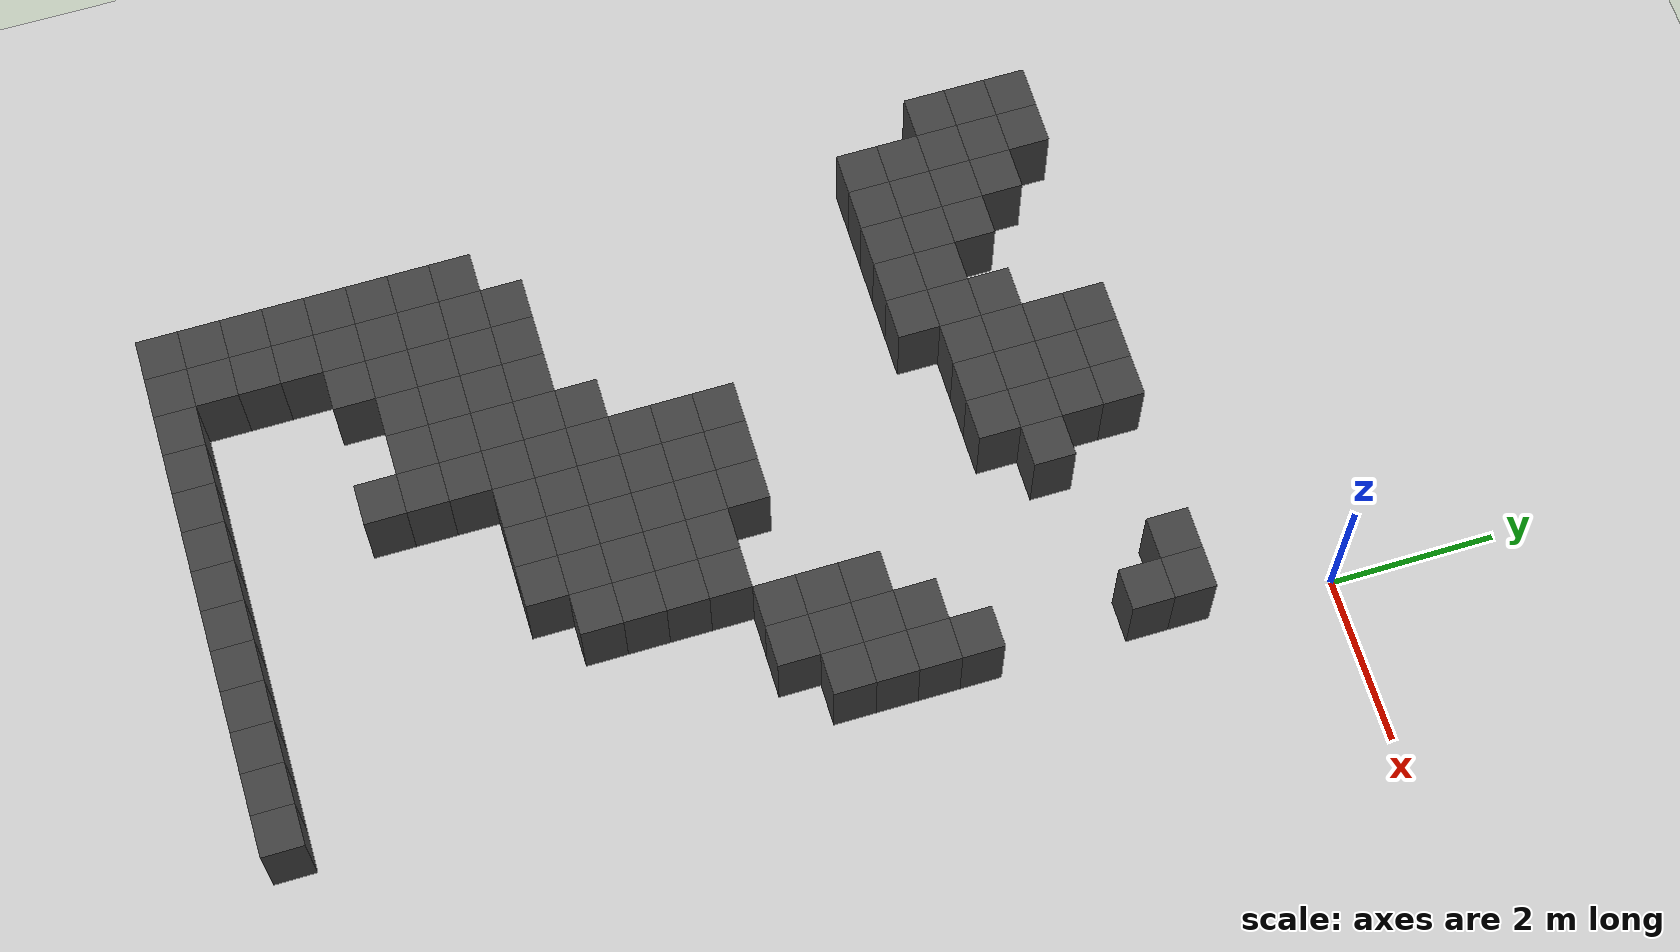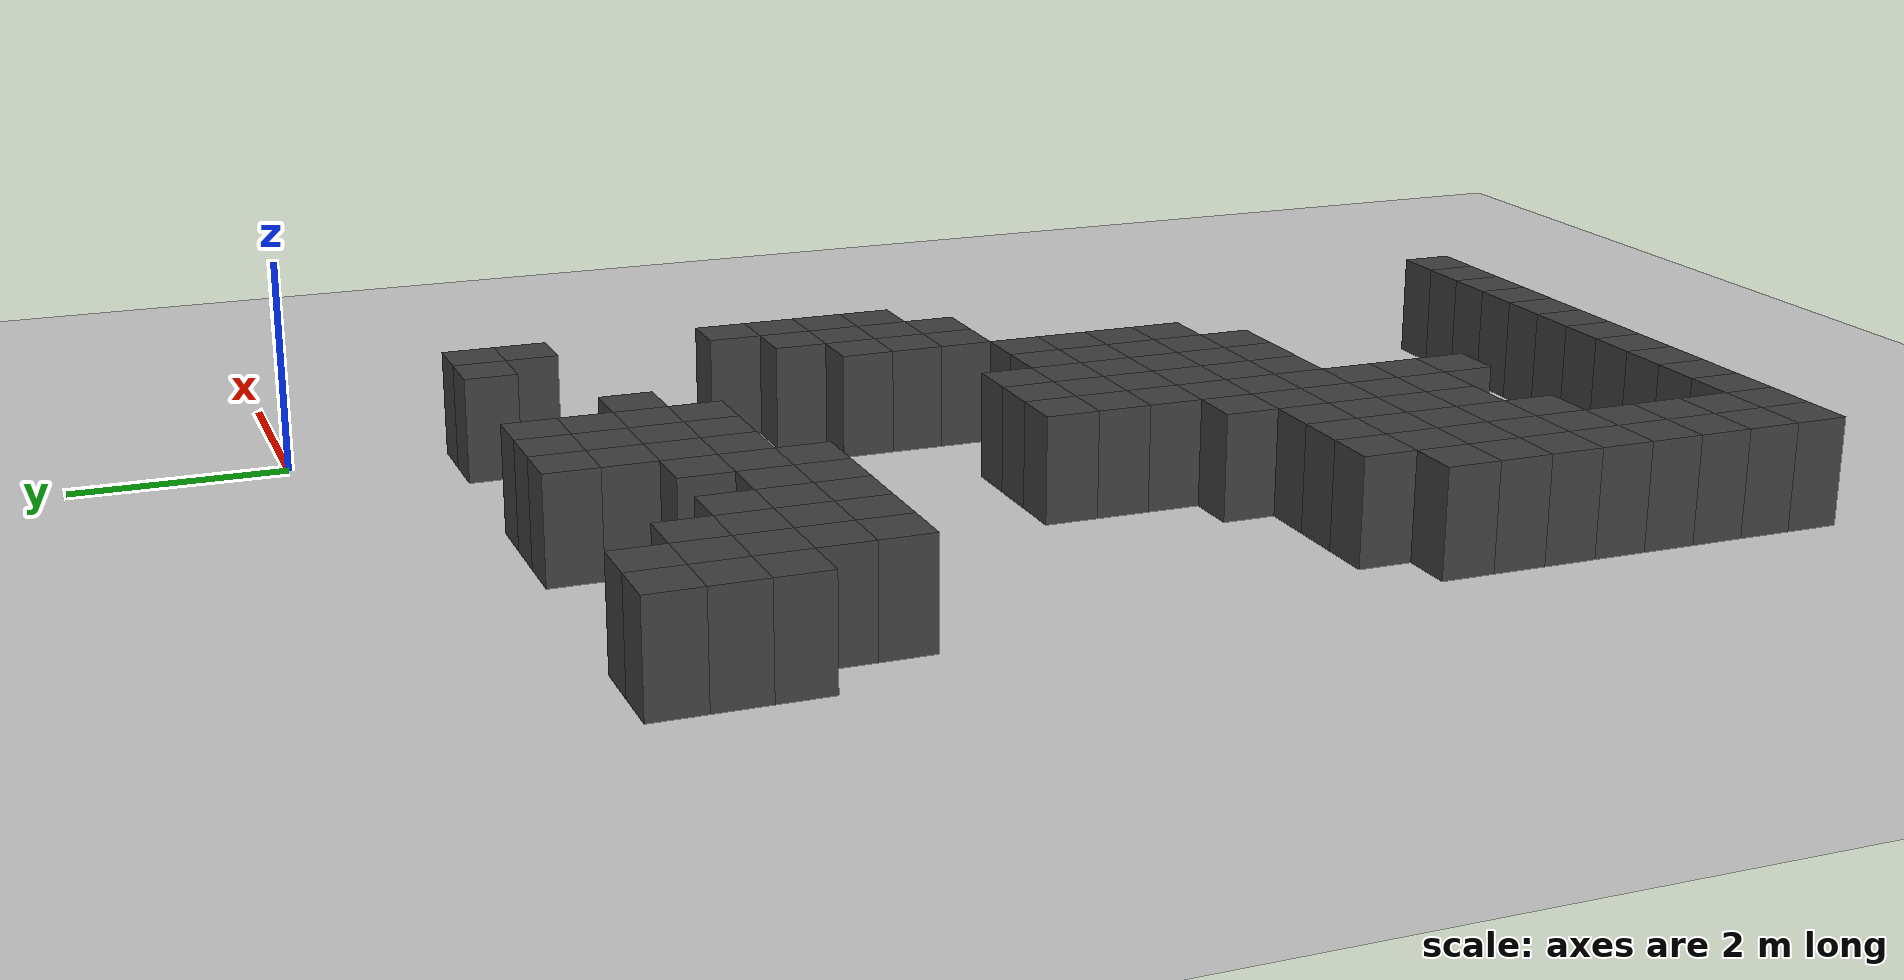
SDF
<sdf version="1.7">
 <world name="map_9826">
  <model name="ground_plane">
   <static>true</static>
   <link name="link">
    <collision name="collision">
     <geometry><plane><normal>0 0 1</normal><size>200 200</size></plane></geometry>
    </collision>
    <visual name="visual">
     <geometry><plane><normal>0 0 1</normal><size>200 200</size></plane></geometry>
     <material><ambient>0.8 0.8 0.8 1</ambient><diffuse>0.8 0.8 0.8 1</diffuse></material>
    </visual>
   </link>
  </model>
  <model name="maze_environment">
   <static>true</static>
   <link name="wall_610">
    <pose>-6.750 -1.750 0.500 0 0 0</pose>
    <collision name="col"><geometry><box><size>0.5 0.5 1.0</size></box></geometry></collision>
    <visual name="vis">
     <geometry><box><size>0.5 0.5 1.0</size></box></geometry>
     <material><ambient>0.15 0.15 0.15 1</ambient><diffuse>0.25 0.25 0.25 1</diffuse></material>
    </visual>
   </link>
   <link name="wall_611">
    <pose>-6.250 -1.750 0.500 0 0 0</pose>
    <collision name="col"><geometry><box><size>0.5 0.5 1.0</size></box></geometry></collision>
    <visual name="vis">
     <geometry><box><size>0.5 0.5 1.0</size></box></geometry>
     <material><ambient>0.15 0.15 0.15 1</ambient><diffuse>0.25 0.25 0.25 1</diffuse></material>
    </visual>
   </link>
   <link name="wall_612">
    <pose>-3.750 -1.750 0.500 0 0 0</pose>
    <collision name="col"><geometry><box><size>0.5 0.5 1.0</size></box></geometry></collision>
    <visual name="vis">
     <geometry><box><size>0.5 0.5 1.0</size></box></geometry>
     <material><ambient>0.15 0.15 0.15 1</ambient><diffuse>0.25 0.25 0.25 1</diffuse></material>
    </visual>
   </link>
   <link name="wall_613">
    <pose>-3.250 -1.750 0.500 0 0 0</pose>
    <collision name="col"><geometry><box><size>0.5 0.5 1.0</size></box></geometry></collision>
    <visual name="vis">
     <geometry><box><size>0.5 0.5 1.0</size></box></geometry>
     <material><ambient>0.15 0.15 0.15 1</ambient><diffuse>0.25 0.25 0.25 1</diffuse></material>
    </visual>
   </link>
   <link name="wall_614">
    <pose>-2.750 -1.750 0.500 0 0 0</pose>
    <collision name="col"><geometry><box><size>0.5 0.5 1.0</size></box></geometry></collision>
    <visual name="vis">
     <geometry><box><size>0.5 0.5 1.0</size></box></geometry>
     <material><ambient>0.15 0.15 0.15 1</ambient><diffuse>0.25 0.25 0.25 1</diffuse></material>
    </visual>
   </link>
   <link name="wall_615">
    <pose>-0.750 -1.750 0.500 0 0 0</pose>
    <collision name="col"><geometry><box><size>0.5 0.5 1.0</size></box></geometry></collision>
    <visual name="vis">
     <geometry><box><size>0.5 0.5 1.0</size></box></geometry>
     <material><ambient>0.15 0.15 0.15 1</ambient><diffuse>0.25 0.25 0.25 1</diffuse></material>
    </visual>
   </link>
   <link name="wall_616">
    <pose>-0.250 -1.750 0.500 0 0 0</pose>
    <collision name="col"><geometry><box><size>0.5 0.5 1.0</size></box></geometry></collision>
    <visual name="vis">
     <geometry><box><size>0.5 0.5 1.0</size></box></geometry>
     <material><ambient>0.15 0.15 0.15 1</ambient><diffuse>0.25 0.25 0.25 1</diffuse></material>
    </visual>
   </link>
   <link name="wall_632">
    <pose>-6.750 -2.250 0.500 0 0 0</pose>
    <collision name="col"><geometry><box><size>0.5 0.5 1.0</size></box></geometry></collision>
    <visual name="vis">
     <geometry><box><size>0.5 0.5 1.0</size></box></geometry>
     <material><ambient>0.15 0.15 0.15 1</ambient><diffuse>0.25 0.25 0.25 1</diffuse></material>
    </visual>
   </link>
   <link name="wall_633">
    <pose>-6.250 -2.250 0.500 0 0 0</pose>
    <collision name="col"><geometry><box><size>0.5 0.5 1.0</size></box></geometry></collision>
    <visual name="vis">
     <geometry><box><size>0.5 0.5 1.0</size></box></geometry>
     <material><ambient>0.15 0.15 0.15 1</ambient><diffuse>0.25 0.25 0.25 1</diffuse></material>
    </visual>
   </link>
   <link name="wall_634">
    <pose>-5.750 -2.250 0.500 0 0 0</pose>
    <collision name="col"><geometry><box><size>0.5 0.5 1.0</size></box></geometry></collision>
    <visual name="vis">
     <geometry><box><size>0.5 0.5 1.0</size></box></geometry>
     <material><ambient>0.15 0.15 0.15 1</ambient><diffuse>0.25 0.25 0.25 1</diffuse></material>
    </visual>
   </link>
   <link name="wall_635">
    <pose>-3.750 -2.250 0.500 0 0 0</pose>
    <collision name="col"><geometry><box><size>0.5 0.5 1.0</size></box></geometry></collision>
    <visual name="vis">
     <geometry><box><size>0.5 0.5 1.0</size></box></geometry>
     <material><ambient>0.15 0.15 0.15 1</ambient><diffuse>0.25 0.25 0.25 1</diffuse></material>
    </visual>
   </link>
   <link name="wall_636">
    <pose>-3.250 -2.250 0.500 0 0 0</pose>
    <collision name="col"><geometry><box><size>0.5 0.5 1.0</size></box></geometry></collision>
    <visual name="vis">
     <geometry><box><size>0.5 0.5 1.0</size></box></geometry>
     <material><ambient>0.15 0.15 0.15 1</ambient><diffuse>0.25 0.25 0.25 1</diffuse></material>
    </visual>
   </link>
   <link name="wall_637">
    <pose>-2.750 -2.250 0.500 0 0 0</pose>
    <collision name="col"><geometry><box><size>0.5 0.5 1.0</size></box></geometry></collision>
    <visual name="vis">
     <geometry><box><size>0.5 0.5 1.0</size></box></geometry>
     <material><ambient>0.15 0.15 0.15 1</ambient><diffuse>0.25 0.25 0.25 1</diffuse></material>
    </visual>
   </link>
   <link name="wall_638">
    <pose>-0.250 -2.250 0.500 0 0 0</pose>
    <collision name="col"><geometry><box><size>0.5 0.5 1.0</size></box></geometry></collision>
    <visual name="vis">
     <geometry><box><size>0.5 0.5 1.0</size></box></geometry>
     <material><ambient>0.15 0.15 0.15 1</ambient><diffuse>0.25 0.25 0.25 1</diffuse></material>
    </visual>
   </link>
   <link name="wall_648">
    <pose>-6.750 -2.750 0.500 0 0 0</pose>
    <collision name="col"><geometry><box><size>0.5 0.5 1.0</size></box></geometry></collision>
    <visual name="vis">
     <geometry><box><size>0.5 0.5 1.0</size></box></geometry>
     <material><ambient>0.15 0.15 0.15 1</ambient><diffuse>0.25 0.25 0.25 1</diffuse></material>
    </visual>
   </link>
   <link name="wall_649">
    <pose>-6.250 -2.750 0.500 0 0 0</pose>
    <collision name="col"><geometry><box><size>0.5 0.5 1.0</size></box></geometry></collision>
    <visual name="vis">
     <geometry><box><size>0.5 0.5 1.0</size></box></geometry>
     <material><ambient>0.15 0.15 0.15 1</ambient><diffuse>0.25 0.25 0.25 1</diffuse></material>
    </visual>
   </link>
   <link name="wall_650">
    <pose>-5.750 -2.750 0.500 0 0 0</pose>
    <collision name="col"><geometry><box><size>0.5 0.5 1.0</size></box></geometry></collision>
    <visual name="vis">
     <geometry><box><size>0.5 0.5 1.0</size></box></geometry>
     <material><ambient>0.15 0.15 0.15 1</ambient><diffuse>0.25 0.25 0.25 1</diffuse></material>
    </visual>
   </link>
   <link name="wall_651">
    <pose>-5.250 -2.750 0.500 0 0 0</pose>
    <collision name="col"><geometry><box><size>0.5 0.5 1.0</size></box></geometry></collision>
    <visual name="vis">
     <geometry><box><size>0.5 0.5 1.0</size></box></geometry>
     <material><ambient>0.15 0.15 0.15 1</ambient><diffuse>0.25 0.25 0.25 1</diffuse></material>
    </visual>
   </link>
   <link name="wall_652">
    <pose>-4.250 -2.750 0.500 0 0 0</pose>
    <collision name="col"><geometry><box><size>0.5 0.5 1.0</size></box></geometry></collision>
    <visual name="vis">
     <geometry><box><size>0.5 0.5 1.0</size></box></geometry>
     <material><ambient>0.15 0.15 0.15 1</ambient><diffuse>0.25 0.25 0.25 1</diffuse></material>
    </visual>
   </link>
   <link name="wall_653">
    <pose>-3.750 -2.750 0.500 0 0 0</pose>
    <collision name="col"><geometry><box><size>0.5 0.5 1.0</size></box></geometry></collision>
    <visual name="vis">
     <geometry><box><size>0.5 0.5 1.0</size></box></geometry>
     <material><ambient>0.15 0.15 0.15 1</ambient><diffuse>0.25 0.25 0.25 1</diffuse></material>
    </visual>
   </link>
   <link name="wall_654">
    <pose>-3.250 -2.750 0.500 0 0 0</pose>
    <collision name="col"><geometry><box><size>0.5 0.5 1.0</size></box></geometry></collision>
    <visual name="vis">
     <geometry><box><size>0.5 0.5 1.0</size></box></geometry>
     <material><ambient>0.15 0.15 0.15 1</ambient><diffuse>0.25 0.25 0.25 1</diffuse></material>
    </visual>
   </link>
   <link name="wall_655">
    <pose>-2.750 -2.750 0.500 0 0 0</pose>
    <collision name="col"><geometry><box><size>0.5 0.5 1.0</size></box></geometry></collision>
    <visual name="vis">
     <geometry><box><size>0.5 0.5 1.0</size></box></geometry>
     <material><ambient>0.15 0.15 0.15 1</ambient><diffuse>0.25 0.25 0.25 1</diffuse></material>
    </visual>
   </link>
   <link name="wall_656">
    <pose>-2.250 -2.750 0.500 0 0 0</pose>
    <collision name="col"><geometry><box><size>0.5 0.5 1.0</size></box></geometry></collision>
    <visual name="vis">
     <geometry><box><size>0.5 0.5 1.0</size></box></geometry>
     <material><ambient>0.15 0.15 0.15 1</ambient><diffuse>0.25 0.25 0.25 1</diffuse></material>
    </visual>
   </link>
   <link name="wall_664">
    <pose>-6.250 -3.250 0.500 0 0 0</pose>
    <collision name="col"><geometry><box><size>0.5 0.5 1.0</size></box></geometry></collision>
    <visual name="vis">
     <geometry><box><size>0.5 0.5 1.0</size></box></geometry>
     <material><ambient>0.15 0.15 0.15 1</ambient><diffuse>0.25 0.25 0.25 1</diffuse></material>
    </visual>
   </link>
   <link name="wall_665">
    <pose>-5.750 -3.250 0.500 0 0 0</pose>
    <collision name="col"><geometry><box><size>0.5 0.5 1.0</size></box></geometry></collision>
    <visual name="vis">
     <geometry><box><size>0.5 0.5 1.0</size></box></geometry>
     <material><ambient>0.15 0.15 0.15 1</ambient><diffuse>0.25 0.25 0.25 1</diffuse></material>
    </visual>
   </link>
   <link name="wall_666">
    <pose>-5.250 -3.250 0.500 0 0 0</pose>
    <collision name="col"><geometry><box><size>0.5 0.5 1.0</size></box></geometry></collision>
    <visual name="vis">
     <geometry><box><size>0.5 0.5 1.0</size></box></geometry>
     <material><ambient>0.15 0.15 0.15 1</ambient><diffuse>0.25 0.25 0.25 1</diffuse></material>
    </visual>
   </link>
   <link name="wall_667">
    <pose>-4.750 -3.250 0.500 0 0 0</pose>
    <collision name="col"><geometry><box><size>0.5 0.5 1.0</size></box></geometry></collision>
    <visual name="vis">
     <geometry><box><size>0.5 0.5 1.0</size></box></geometry>
     <material><ambient>0.15 0.15 0.15 1</ambient><diffuse>0.25 0.25 0.25 1</diffuse></material>
    </visual>
   </link>
   <link name="wall_668">
    <pose>-4.250 -3.250 0.500 0 0 0</pose>
    <collision name="col"><geometry><box><size>0.5 0.5 1.0</size></box></geometry></collision>
    <visual name="vis">
     <geometry><box><size>0.5 0.5 1.0</size></box></geometry>
     <material><ambient>0.15 0.15 0.15 1</ambient><diffuse>0.25 0.25 0.25 1</diffuse></material>
    </visual>
   </link>
   <link name="wall_669">
    <pose>-3.750 -3.250 0.500 0 0 0</pose>
    <collision name="col"><geometry><box><size>0.5 0.5 1.0</size></box></geometry></collision>
    <visual name="vis">
     <geometry><box><size>0.5 0.5 1.0</size></box></geometry>
     <material><ambient>0.15 0.15 0.15 1</ambient><diffuse>0.25 0.25 0.25 1</diffuse></material>
    </visual>
   </link>
   <link name="wall_670">
    <pose>-3.250 -3.250 0.500 0 0 0</pose>
    <collision name="col"><geometry><box><size>0.5 0.5 1.0</size></box></geometry></collision>
    <visual name="vis">
     <geometry><box><size>0.5 0.5 1.0</size></box></geometry>
     <material><ambient>0.15 0.15 0.15 1</ambient><diffuse>0.25 0.25 0.25 1</diffuse></material>
    </visual>
   </link>
   <link name="wall_671">
    <pose>-2.750 -3.250 0.500 0 0 0</pose>
    <collision name="col"><geometry><box><size>0.5 0.5 1.0</size></box></geometry></collision>
    <visual name="vis">
     <geometry><box><size>0.5 0.5 1.0</size></box></geometry>
     <material><ambient>0.15 0.15 0.15 1</ambient><diffuse>0.25 0.25 0.25 1</diffuse></material>
    </visual>
   </link>
   <link name="wall_680">
    <pose>-6.250 -3.750 0.500 0 0 0</pose>
    <collision name="col"><geometry><box><size>0.5 0.5 1.0</size></box></geometry></collision>
    <visual name="vis">
     <geometry><box><size>0.5 0.5 1.0</size></box></geometry>
     <material><ambient>0.15 0.15 0.15 1</ambient><diffuse>0.25 0.25 0.25 1</diffuse></material>
    </visual>
   </link>
   <link name="wall_681">
    <pose>-5.750 -3.750 0.500 0 0 0</pose>
    <collision name="col"><geometry><box><size>0.5 0.5 1.0</size></box></geometry></collision>
    <visual name="vis">
     <geometry><box><size>0.5 0.5 1.0</size></box></geometry>
     <material><ambient>0.15 0.15 0.15 1</ambient><diffuse>0.25 0.25 0.25 1</diffuse></material>
    </visual>
   </link>
   <link name="wall_682">
    <pose>-5.250 -3.750 0.500 0 0 0</pose>
    <collision name="col"><geometry><box><size>0.5 0.5 1.0</size></box></geometry></collision>
    <visual name="vis">
     <geometry><box><size>0.5 0.5 1.0</size></box></geometry>
     <material><ambient>0.15 0.15 0.15 1</ambient><diffuse>0.25 0.25 0.25 1</diffuse></material>
    </visual>
   </link>
   <link name="wall_683">
    <pose>-4.750 -3.750 0.500 0 0 0</pose>
    <collision name="col"><geometry><box><size>0.5 0.5 1.0</size></box></geometry></collision>
    <visual name="vis">
     <geometry><box><size>0.5 0.5 1.0</size></box></geometry>
     <material><ambient>0.15 0.15 0.15 1</ambient><diffuse>0.25 0.25 0.25 1</diffuse></material>
    </visual>
   </link>
   <link name="wall_684">
    <pose>-4.250 -3.750 0.500 0 0 0</pose>
    <collision name="col"><geometry><box><size>0.5 0.5 1.0</size></box></geometry></collision>
    <visual name="vis">
     <geometry><box><size>0.5 0.5 1.0</size></box></geometry>
     <material><ambient>0.15 0.15 0.15 1</ambient><diffuse>0.25 0.25 0.25 1</diffuse></material>
    </visual>
   </link>
   <link name="wall_694">
    <pose>-0.250 -4.250 0.500 0 0 0</pose>
    <collision name="col"><geometry><box><size>0.5 0.5 1.0</size></box></geometry></collision>
    <visual name="vis">
     <geometry><box><size>0.5 0.5 1.0</size></box></geometry>
     <material><ambient>0.15 0.15 0.15 1</ambient><diffuse>0.25 0.25 0.25 1</diffuse></material>
    </visual>
   </link>
   <link name="wall_707">
    <pose>-0.750 -4.750 0.500 0 0 0</pose>
    <collision name="col"><geometry><box><size>0.5 0.5 1.0</size></box></geometry></collision>
    <visual name="vis">
     <geometry><box><size>0.5 0.5 1.0</size></box></geometry>
     <material><ambient>0.15 0.15 0.15 1</ambient><diffuse>0.25 0.25 0.25 1</diffuse></material>
    </visual>
   </link>
   <link name="wall_708">
    <pose>-0.250 -4.750 0.500 0 0 0</pose>
    <collision name="col"><geometry><box><size>0.5 0.5 1.0</size></box></geometry></collision>
    <visual name="vis">
     <geometry><box><size>0.5 0.5 1.0</size></box></geometry>
     <material><ambient>0.15 0.15 0.15 1</ambient><diffuse>0.25 0.25 0.25 1</diffuse></material>
    </visual>
   </link>
   <link name="wall_723">
    <pose>-1.250 -5.250 0.500 0 0 0</pose>
    <collision name="col"><geometry><box><size>0.5 0.5 1.0</size></box></geometry></collision>
    <visual name="vis">
     <geometry><box><size>0.5 0.5 1.0</size></box></geometry>
     <material><ambient>0.15 0.15 0.15 1</ambient><diffuse>0.25 0.25 0.25 1</diffuse></material>
    </visual>
   </link>
   <link name="wall_724">
    <pose>-0.750 -5.250 0.500 0 0 0</pose>
    <collision name="col"><geometry><box><size>0.5 0.5 1.0</size></box></geometry></collision>
    <visual name="vis">
     <geometry><box><size>0.5 0.5 1.0</size></box></geometry>
     <material><ambient>0.15 0.15 0.15 1</ambient><diffuse>0.25 0.25 0.25 1</diffuse></material>
    </visual>
   </link>
   <link name="wall_725">
    <pose>-0.250 -5.250 0.500 0 0 0</pose>
    <collision name="col"><geometry><box><size>0.5 0.5 1.0</size></box></geometry></collision>
    <visual name="vis">
     <geometry><box><size>0.5 0.5 1.0</size></box></geometry>
     <material><ambient>0.15 0.15 0.15 1</ambient><diffuse>0.25 0.25 0.25 1</diffuse></material>
    </visual>
   </link>
   <link name="wall_742">
    <pose>-1.250 -5.750 0.500 0 0 0</pose>
    <collision name="col"><geometry><box><size>0.5 0.5 1.0</size></box></geometry></collision>
    <visual name="vis">
     <geometry><box><size>0.5 0.5 1.0</size></box></geometry>
     <material><ambient>0.15 0.15 0.15 1</ambient><diffuse>0.25 0.25 0.25 1</diffuse></material>
    </visual>
   </link>
   <link name="wall_743">
    <pose>-0.750 -5.750 0.500 0 0 0</pose>
    <collision name="col"><geometry><box><size>0.5 0.5 1.0</size></box></geometry></collision>
    <visual name="vis">
     <geometry><box><size>0.5 0.5 1.0</size></box></geometry>
     <material><ambient>0.15 0.15 0.15 1</ambient><diffuse>0.25 0.25 0.25 1</diffuse></material>
    </visual>
   </link>
   <link name="wall_744">
    <pose>-0.250 -5.750 0.500 0 0 0</pose>
    <collision name="col"><geometry><box><size>0.5 0.5 1.0</size></box></geometry></collision>
    <visual name="vis">
     <geometry><box><size>0.5 0.5 1.0</size></box></geometry>
     <material><ambient>0.15 0.15 0.15 1</ambient><diffuse>0.25 0.25 0.25 1</diffuse></material>
    </visual>
   </link>
   <link name="wall_761">
    <pose>-3.750 -6.250 0.500 0 0 0</pose>
    <collision name="col"><geometry><box><size>0.5 0.5 1.0</size></box></geometry></collision>
    <visual name="vis">
     <geometry><box><size>0.5 0.5 1.0</size></box></geometry>
     <material><ambient>0.15 0.15 0.15 1</ambient><diffuse>0.25 0.25 0.25 1</diffuse></material>
    </visual>
   </link>
   <link name="wall_762">
    <pose>-3.250 -6.250 0.500 0 0 0</pose>
    <collision name="col"><geometry><box><size>0.5 0.5 1.0</size></box></geometry></collision>
    <visual name="vis">
     <geometry><box><size>0.5 0.5 1.0</size></box></geometry>
     <material><ambient>0.15 0.15 0.15 1</ambient><diffuse>0.25 0.25 0.25 1</diffuse></material>
    </visual>
   </link>
   <link name="wall_763">
    <pose>-2.750 -6.250 0.500 0 0 0</pose>
    <collision name="col"><geometry><box><size>0.5 0.5 1.0</size></box></geometry></collision>
    <visual name="vis">
     <geometry><box><size>0.5 0.5 1.0</size></box></geometry>
     <material><ambient>0.15 0.15 0.15 1</ambient><diffuse>0.25 0.25 0.25 1</diffuse></material>
    </visual>
   </link>
   <link name="wall_764">
    <pose>-1.250 -6.250 0.500 0 0 0</pose>
    <collision name="col"><geometry><box><size>0.5 0.5 1.0</size></box></geometry></collision>
    <visual name="vis">
     <geometry><box><size>0.5 0.5 1.0</size></box></geometry>
     <material><ambient>0.15 0.15 0.15 1</ambient><diffuse>0.25 0.25 0.25 1</diffuse></material>
    </visual>
   </link>
   <link name="wall_765">
    <pose>-0.750 -6.250 0.500 0 0 0</pose>
    <collision name="col"><geometry><box><size>0.5 0.5 1.0</size></box></geometry></collision>
    <visual name="vis">
     <geometry><box><size>0.5 0.5 1.0</size></box></geometry>
     <material><ambient>0.15 0.15 0.15 1</ambient><diffuse>0.25 0.25 0.25 1</diffuse></material>
    </visual>
   </link>
   <link name="wall_783">
    <pose>-3.750 -6.750 0.500 0 0 0</pose>
    <collision name="col"><geometry><box><size>0.5 0.5 1.0</size></box></geometry></collision>
    <visual name="vis">
     <geometry><box><size>0.5 0.5 1.0</size></box></geometry>
     <material><ambient>0.15 0.15 0.15 1</ambient><diffuse>0.25 0.25 0.25 1</diffuse></material>
    </visual>
   </link>
   <link name="wall_784">
    <pose>-3.250 -6.750 0.500 0 0 0</pose>
    <collision name="col"><geometry><box><size>0.5 0.5 1.0</size></box></geometry></collision>
    <visual name="vis">
     <geometry><box><size>0.5 0.5 1.0</size></box></geometry>
     <material><ambient>0.15 0.15 0.15 1</ambient><diffuse>0.25 0.25 0.25 1</diffuse></material>
    </visual>
   </link>
   <link name="wall_785">
    <pose>-2.750 -6.750 0.500 0 0 0</pose>
    <collision name="col"><geometry><box><size>0.5 0.5 1.0</size></box></geometry></collision>
    <visual name="vis">
     <geometry><box><size>0.5 0.5 1.0</size></box></geometry>
     <material><ambient>0.15 0.15 0.15 1</ambient><diffuse>0.25 0.25 0.25 1</diffuse></material>
    </visual>
   </link>
   <link name="wall_786">
    <pose>-2.250 -6.750 0.500 0 0 0</pose>
    <collision name="col"><geometry><box><size>0.5 0.5 1.0</size></box></geometry></collision>
    <visual name="vis">
     <geometry><box><size>0.5 0.5 1.0</size></box></geometry>
     <material><ambient>0.15 0.15 0.15 1</ambient><diffuse>0.25 0.25 0.25 1</diffuse></material>
    </visual>
   </link>
   <link name="wall_787">
    <pose>-1.750 -6.750 0.500 0 0 0</pose>
    <collision name="col"><geometry><box><size>0.5 0.5 1.0</size></box></geometry></collision>
    <visual name="vis">
     <geometry><box><size>0.5 0.5 1.0</size></box></geometry>
     <material><ambient>0.15 0.15 0.15 1</ambient><diffuse>0.25 0.25 0.25 1</diffuse></material>
    </visual>
   </link>
   <link name="wall_804">
    <pose>-3.750 -7.250 0.500 0 0 0</pose>
    <collision name="col"><geometry><box><size>0.5 0.5 1.0</size></box></geometry></collision>
    <visual name="vis">
     <geometry><box><size>0.5 0.5 1.0</size></box></geometry>
     <material><ambient>0.15 0.15 0.15 1</ambient><diffuse>0.25 0.25 0.25 1</diffuse></material>
    </visual>
   </link>
   <link name="wall_805">
    <pose>-3.250 -7.250 0.500 0 0 0</pose>
    <collision name="col"><geometry><box><size>0.5 0.5 1.0</size></box></geometry></collision>
    <visual name="vis">
     <geometry><box><size>0.5 0.5 1.0</size></box></geometry>
     <material><ambient>0.15 0.15 0.15 1</ambient><diffuse>0.25 0.25 0.25 1</diffuse></material>
    </visual>
   </link>
   <link name="wall_806">
    <pose>-2.750 -7.250 0.500 0 0 0</pose>
    <collision name="col"><geometry><box><size>0.5 0.5 1.0</size></box></geometry></collision>
    <visual name="vis">
     <geometry><box><size>0.5 0.5 1.0</size></box></geometry>
     <material><ambient>0.15 0.15 0.15 1</ambient><diffuse>0.25 0.25 0.25 1</diffuse></material>
    </visual>
   </link>
   <link name="wall_807">
    <pose>-2.250 -7.250 0.500 0 0 0</pose>
    <collision name="col"><geometry><box><size>0.5 0.5 1.0</size></box></geometry></collision>
    <visual name="vis">
     <geometry><box><size>0.5 0.5 1.0</size></box></geometry>
     <material><ambient>0.15 0.15 0.15 1</ambient><diffuse>0.25 0.25 0.25 1</diffuse></material>
    </visual>
   </link>
   <link name="wall_808">
    <pose>-1.750 -7.250 0.500 0 0 0</pose>
    <collision name="col"><geometry><box><size>0.5 0.5 1.0</size></box></geometry></collision>
    <visual name="vis">
     <geometry><box><size>0.5 0.5 1.0</size></box></geometry>
     <material><ambient>0.15 0.15 0.15 1</ambient><diffuse>0.25 0.25 0.25 1</diffuse></material>
    </visual>
   </link>
   <link name="wall_819">
    <pose>-4.250 -7.750 0.500 0 0 0</pose>
    <collision name="col"><geometry><box><size>0.5 0.5 1.0</size></box></geometry></collision>
    <visual name="vis">
     <geometry><box><size>0.5 0.5 1.0</size></box></geometry>
     <material><ambient>0.15 0.15 0.15 1</ambient><diffuse>0.25 0.25 0.25 1</diffuse></material>
    </visual>
   </link>
   <link name="wall_820">
    <pose>-3.750 -7.750 0.500 0 0 0</pose>
    <collision name="col"><geometry><box><size>0.5 0.5 1.0</size></box></geometry></collision>
    <visual name="vis">
     <geometry><box><size>0.5 0.5 1.0</size></box></geometry>
     <material><ambient>0.15 0.15 0.15 1</ambient><diffuse>0.25 0.25 0.25 1</diffuse></material>
    </visual>
   </link>
   <link name="wall_821">
    <pose>-3.250 -7.750 0.500 0 0 0</pose>
    <collision name="col"><geometry><box><size>0.5 0.5 1.0</size></box></geometry></collision>
    <visual name="vis">
     <geometry><box><size>0.5 0.5 1.0</size></box></geometry>
     <material><ambient>0.15 0.15 0.15 1</ambient><diffuse>0.25 0.25 0.25 1</diffuse></material>
    </visual>
   </link>
   <link name="wall_822">
    <pose>-2.750 -7.750 0.500 0 0 0</pose>
    <collision name="col"><geometry><box><size>0.5 0.5 1.0</size></box></geometry></collision>
    <visual name="vis">
     <geometry><box><size>0.5 0.5 1.0</size></box></geometry>
     <material><ambient>0.15 0.15 0.15 1</ambient><diffuse>0.25 0.25 0.25 1</diffuse></material>
    </visual>
   </link>
   <link name="wall_823">
    <pose>-2.250 -7.750 0.500 0 0 0</pose>
    <collision name="col"><geometry><box><size>0.5 0.5 1.0</size></box></geometry></collision>
    <visual name="vis">
     <geometry><box><size>0.5 0.5 1.0</size></box></geometry>
     <material><ambient>0.15 0.15 0.15 1</ambient><diffuse>0.25 0.25 0.25 1</diffuse></material>
    </visual>
   </link>
   <link name="wall_824">
    <pose>-1.750 -7.750 0.500 0 0 0</pose>
    <collision name="col"><geometry><box><size>0.5 0.5 1.0</size></box></geometry></collision>
    <visual name="vis">
     <geometry><box><size>0.5 0.5 1.0</size></box></geometry>
     <material><ambient>0.15 0.15 0.15 1</ambient><diffuse>0.25 0.25 0.25 1</diffuse></material>
    </visual>
   </link>
   <link name="wall_835">
    <pose>-5.750 -8.250 0.500 0 0 0</pose>
    <collision name="col"><geometry><box><size>0.5 0.5 1.0</size></box></geometry></collision>
    <visual name="vis">
     <geometry><box><size>0.5 0.5 1.0</size></box></geometry>
     <material><ambient>0.15 0.15 0.15 1</ambient><diffuse>0.25 0.25 0.25 1</diffuse></material>
    </visual>
   </link>
   <link name="wall_836">
    <pose>-5.250 -8.250 0.500 0 0 0</pose>
    <collision name="col"><geometry><box><size>0.5 0.5 1.0</size></box></geometry></collision>
    <visual name="vis">
     <geometry><box><size>0.5 0.5 1.0</size></box></geometry>
     <material><ambient>0.15 0.15 0.15 1</ambient><diffuse>0.25 0.25 0.25 1</diffuse></material>
    </visual>
   </link>
   <link name="wall_837">
    <pose>-4.750 -8.250 0.500 0 0 0</pose>
    <collision name="col"><geometry><box><size>0.5 0.5 1.0</size></box></geometry></collision>
    <visual name="vis">
     <geometry><box><size>0.5 0.5 1.0</size></box></geometry>
     <material><ambient>0.15 0.15 0.15 1</ambient><diffuse>0.25 0.25 0.25 1</diffuse></material>
    </visual>
   </link>
   <link name="wall_838">
    <pose>-4.250 -8.250 0.500 0 0 0</pose>
    <collision name="col"><geometry><box><size>0.5 0.5 1.0</size></box></geometry></collision>
    <visual name="vis">
     <geometry><box><size>0.5 0.5 1.0</size></box></geometry>
     <material><ambient>0.15 0.15 0.15 1</ambient><diffuse>0.25 0.25 0.25 1</diffuse></material>
    </visual>
   </link>
   <link name="wall_839">
    <pose>-3.750 -8.250 0.500 0 0 0</pose>
    <collision name="col"><geometry><box><size>0.5 0.5 1.0</size></box></geometry></collision>
    <visual name="vis">
     <geometry><box><size>0.5 0.5 1.0</size></box></geometry>
     <material><ambient>0.15 0.15 0.15 1</ambient><diffuse>0.25 0.25 0.25 1</diffuse></material>
    </visual>
   </link>
   <link name="wall_840">
    <pose>-3.250 -8.250 0.500 0 0 0</pose>
    <collision name="col"><geometry><box><size>0.5 0.5 1.0</size></box></geometry></collision>
    <visual name="vis">
     <geometry><box><size>0.5 0.5 1.0</size></box></geometry>
     <material><ambient>0.15 0.15 0.15 1</ambient><diffuse>0.25 0.25 0.25 1</diffuse></material>
    </visual>
   </link>
   <link name="wall_841">
    <pose>-2.750 -8.250 0.500 0 0 0</pose>
    <collision name="col"><geometry><box><size>0.5 0.5 1.0</size></box></geometry></collision>
    <visual name="vis">
     <geometry><box><size>0.5 0.5 1.0</size></box></geometry>
     <material><ambient>0.15 0.15 0.15 1</ambient><diffuse>0.25 0.25 0.25 1</diffuse></material>
    </visual>
   </link>
   <link name="wall_842">
    <pose>-2.250 -8.250 0.500 0 0 0</pose>
    <collision name="col"><geometry><box><size>0.5 0.5 1.0</size></box></geometry></collision>
    <visual name="vis">
     <geometry><box><size>0.5 0.5 1.0</size></box></geometry>
     <material><ambient>0.15 0.15 0.15 1</ambient><diffuse>0.25 0.25 0.25 1</diffuse></material>
    </visual>
   </link>
   <link name="wall_843">
    <pose>-1.750 -8.250 0.500 0 0 0</pose>
    <collision name="col"><geometry><box><size>0.5 0.5 1.0</size></box></geometry></collision>
    <visual name="vis">
     <geometry><box><size>0.5 0.5 1.0</size></box></geometry>
     <material><ambient>0.15 0.15 0.15 1</ambient><diffuse>0.25 0.25 0.25 1</diffuse></material>
    </visual>
   </link>
   <link name="wall_854">
    <pose>-6.250 -8.750 0.500 0 0 0</pose>
    <collision name="col"><geometry><box><size>0.5 0.5 1.0</size></box></geometry></collision>
    <visual name="vis">
     <geometry><box><size>0.5 0.5 1.0</size></box></geometry>
     <material><ambient>0.15 0.15 0.15 1</ambient><diffuse>0.25 0.25 0.25 1</diffuse></material>
    </visual>
   </link>
   <link name="wall_855">
    <pose>-5.750 -8.750 0.500 0 0 0</pose>
    <collision name="col"><geometry><box><size>0.5 0.5 1.0</size></box></geometry></collision>
    <visual name="vis">
     <geometry><box><size>0.5 0.5 1.0</size></box></geometry>
     <material><ambient>0.15 0.15 0.15 1</ambient><diffuse>0.25 0.25 0.25 1</diffuse></material>
    </visual>
   </link>
   <link name="wall_856">
    <pose>-5.250 -8.750 0.500 0 0 0</pose>
    <collision name="col"><geometry><box><size>0.5 0.5 1.0</size></box></geometry></collision>
    <visual name="vis">
     <geometry><box><size>0.5 0.5 1.0</size></box></geometry>
     <material><ambient>0.15 0.15 0.15 1</ambient><diffuse>0.25 0.25 0.25 1</diffuse></material>
    </visual>
   </link>
   <link name="wall_857">
    <pose>-4.750 -8.750 0.500 0 0 0</pose>
    <collision name="col"><geometry><box><size>0.5 0.5 1.0</size></box></geometry></collision>
    <visual name="vis">
     <geometry><box><size>0.5 0.5 1.0</size></box></geometry>
     <material><ambient>0.15 0.15 0.15 1</ambient><diffuse>0.25 0.25 0.25 1</diffuse></material>
    </visual>
   </link>
   <link name="wall_858">
    <pose>-4.250 -8.750 0.500 0 0 0</pose>
    <collision name="col"><geometry><box><size>0.5 0.5 1.0</size></box></geometry></collision>
    <visual name="vis">
     <geometry><box><size>0.5 0.5 1.0</size></box></geometry>
     <material><ambient>0.15 0.15 0.15 1</ambient><diffuse>0.25 0.25 0.25 1</diffuse></material>
    </visual>
   </link>
   <link name="wall_859">
    <pose>-3.750 -8.750 0.500 0 0 0</pose>
    <collision name="col"><geometry><box><size>0.5 0.5 1.0</size></box></geometry></collision>
    <visual name="vis">
     <geometry><box><size>0.5 0.5 1.0</size></box></geometry>
     <material><ambient>0.15 0.15 0.15 1</ambient><diffuse>0.25 0.25 0.25 1</diffuse></material>
    </visual>
   </link>
   <link name="wall_860">
    <pose>-3.250 -8.750 0.500 0 0 0</pose>
    <collision name="col"><geometry><box><size>0.5 0.5 1.0</size></box></geometry></collision>
    <visual name="vis">
     <geometry><box><size>0.5 0.5 1.0</size></box></geometry>
     <material><ambient>0.15 0.15 0.15 1</ambient><diffuse>0.25 0.25 0.25 1</diffuse></material>
    </visual>
   </link>
   <link name="wall_861">
    <pose>-2.750 -8.750 0.500 0 0 0</pose>
    <collision name="col"><geometry><box><size>0.5 0.5 1.0</size></box></geometry></collision>
    <visual name="vis">
     <geometry><box><size>0.5 0.5 1.0</size></box></geometry>
     <material><ambient>0.15 0.15 0.15 1</ambient><diffuse>0.25 0.25 0.25 1</diffuse></material>
    </visual>
   </link>
   <link name="wall_862">
    <pose>-2.250 -8.750 0.500 0 0 0</pose>
    <collision name="col"><geometry><box><size>0.5 0.5 1.0</size></box></geometry></collision>
    <visual name="vis">
     <geometry><box><size>0.5 0.5 1.0</size></box></geometry>
     <material><ambient>0.15 0.15 0.15 1</ambient><diffuse>0.25 0.25 0.25 1</diffuse></material>
    </visual>
   </link>
   <link name="wall_878">
    <pose>-6.250 -9.250 0.500 0 0 0</pose>
    <collision name="col"><geometry><box><size>0.5 0.5 1.0</size></box></geometry></collision>
    <visual name="vis">
     <geometry><box><size>0.5 0.5 1.0</size></box></geometry>
     <material><ambient>0.15 0.15 0.15 1</ambient><diffuse>0.25 0.25 0.25 1</diffuse></material>
    </visual>
   </link>
   <link name="wall_879">
    <pose>-5.750 -9.250 0.500 0 0 0</pose>
    <collision name="col"><geometry><box><size>0.5 0.5 1.0</size></box></geometry></collision>
    <visual name="vis">
     <geometry><box><size>0.5 0.5 1.0</size></box></geometry>
     <material><ambient>0.15 0.15 0.15 1</ambient><diffuse>0.25 0.25 0.25 1</diffuse></material>
    </visual>
   </link>
   <link name="wall_880">
    <pose>-5.250 -9.250 0.500 0 0 0</pose>
    <collision name="col"><geometry><box><size>0.5 0.5 1.0</size></box></geometry></collision>
    <visual name="vis">
     <geometry><box><size>0.5 0.5 1.0</size></box></geometry>
     <material><ambient>0.15 0.15 0.15 1</ambient><diffuse>0.25 0.25 0.25 1</diffuse></material>
    </visual>
   </link>
   <link name="wall_881">
    <pose>-4.750 -9.250 0.500 0 0 0</pose>
    <collision name="col"><geometry><box><size>0.5 0.5 1.0</size></box></geometry></collision>
    <visual name="vis">
     <geometry><box><size>0.5 0.5 1.0</size></box></geometry>
     <material><ambient>0.15 0.15 0.15 1</ambient><diffuse>0.25 0.25 0.25 1</diffuse></material>
    </visual>
   </link>
   <link name="wall_882">
    <pose>-4.250 -9.250 0.500 0 0 0</pose>
    <collision name="col"><geometry><box><size>0.5 0.5 1.0</size></box></geometry></collision>
    <visual name="vis">
     <geometry><box><size>0.5 0.5 1.0</size></box></geometry>
     <material><ambient>0.15 0.15 0.15 1</ambient><diffuse>0.25 0.25 0.25 1</diffuse></material>
    </visual>
   </link>
   <link name="wall_883">
    <pose>-3.750 -9.250 0.500 0 0 0</pose>
    <collision name="col"><geometry><box><size>0.5 0.5 1.0</size></box></geometry></collision>
    <visual name="vis">
     <geometry><box><size>0.5 0.5 1.0</size></box></geometry>
     <material><ambient>0.15 0.15 0.15 1</ambient><diffuse>0.25 0.25 0.25 1</diffuse></material>
    </visual>
   </link>
   <link name="wall_903">
    <pose>-6.250 -9.750 0.500 0 0 0</pose>
    <collision name="col"><geometry><box><size>0.5 0.5 1.0</size></box></geometry></collision>
    <visual name="vis">
     <geometry><box><size>0.5 0.5 1.0</size></box></geometry>
     <material><ambient>0.15 0.15 0.15 1</ambient><diffuse>0.25 0.25 0.25 1</diffuse></material>
    </visual>
   </link>
   <link name="wall_904">
    <pose>-5.750 -9.750 0.500 0 0 0</pose>
    <collision name="col"><geometry><box><size>0.5 0.5 1.0</size></box></geometry></collision>
    <visual name="vis">
     <geometry><box><size>0.5 0.5 1.0</size></box></geometry>
     <material><ambient>0.15 0.15 0.15 1</ambient><diffuse>0.25 0.25 0.25 1</diffuse></material>
    </visual>
   </link>
   <link name="wall_905">
    <pose>-5.250 -9.750 0.500 0 0 0</pose>
    <collision name="col"><geometry><box><size>0.5 0.5 1.0</size></box></geometry></collision>
    <visual name="vis">
     <geometry><box><size>0.5 0.5 1.0</size></box></geometry>
     <material><ambient>0.15 0.15 0.15 1</ambient><diffuse>0.25 0.25 0.25 1</diffuse></material>
    </visual>
   </link>
   <link name="wall_906">
    <pose>-4.750 -9.750 0.500 0 0 0</pose>
    <collision name="col"><geometry><box><size>0.5 0.5 1.0</size></box></geometry></collision>
    <visual name="vis">
     <geometry><box><size>0.5 0.5 1.0</size></box></geometry>
     <material><ambient>0.15 0.15 0.15 1</ambient><diffuse>0.25 0.25 0.25 1</diffuse></material>
    </visual>
   </link>
   <link name="wall_907">
    <pose>-4.250 -9.750 0.500 0 0 0</pose>
    <collision name="col"><geometry><box><size>0.5 0.5 1.0</size></box></geometry></collision>
    <visual name="vis">
     <geometry><box><size>0.5 0.5 1.0</size></box></geometry>
     <material><ambient>0.15 0.15 0.15 1</ambient><diffuse>0.25 0.25 0.25 1</diffuse></material>
    </visual>
   </link>
   <link name="wall_908">
    <pose>-3.750 -9.750 0.500 0 0 0</pose>
    <collision name="col"><geometry><box><size>0.5 0.5 1.0</size></box></geometry></collision>
    <visual name="vis">
     <geometry><box><size>0.5 0.5 1.0</size></box></geometry>
     <material><ambient>0.15 0.15 0.15 1</ambient><diffuse>0.25 0.25 0.25 1</diffuse></material>
    </visual>
   </link>
   <link name="wall_929">
    <pose>-6.250 -10.250 0.500 0 0 0</pose>
    <collision name="col"><geometry><box><size>0.5 0.5 1.0</size></box></geometry></collision>
    <visual name="vis">
     <geometry><box><size>0.5 0.5 1.0</size></box></geometry>
     <material><ambient>0.15 0.15 0.15 1</ambient><diffuse>0.25 0.25 0.25 1</diffuse></material>
    </visual>
   </link>
   <link name="wall_930">
    <pose>-5.750 -10.250 0.500 0 0 0</pose>
    <collision name="col"><geometry><box><size>0.5 0.5 1.0</size></box></geometry></collision>
    <visual name="vis">
     <geometry><box><size>0.5 0.5 1.0</size></box></geometry>
     <material><ambient>0.15 0.15 0.15 1</ambient><diffuse>0.25 0.25 0.25 1</diffuse></material>
    </visual>
   </link>
   <link name="wall_931">
    <pose>-5.250 -10.250 0.500 0 0 0</pose>
    <collision name="col"><geometry><box><size>0.5 0.5 1.0</size></box></geometry></collision>
    <visual name="vis">
     <geometry><box><size>0.5 0.5 1.0</size></box></geometry>
     <material><ambient>0.15 0.15 0.15 1</ambient><diffuse>0.25 0.25 0.25 1</diffuse></material>
    </visual>
   </link>
   <link name="wall_932">
    <pose>-3.750 -10.250 0.500 0 0 0</pose>
    <collision name="col"><geometry><box><size>0.5 0.5 1.0</size></box></geometry></collision>
    <visual name="vis">
     <geometry><box><size>0.5 0.5 1.0</size></box></geometry>
     <material><ambient>0.15 0.15 0.15 1</ambient><diffuse>0.25 0.25 0.25 1</diffuse></material>
    </visual>
   </link>
   <link name="wall_954">
    <pose>-6.250 -10.750 0.500 0 0 0</pose>
    <collision name="col"><geometry><box><size>0.5 0.5 1.0</size></box></geometry></collision>
    <visual name="vis">
     <geometry><box><size>0.5 0.5 1.0</size></box></geometry>
     <material><ambient>0.15 0.15 0.15 1</ambient><diffuse>0.25 0.25 0.25 1</diffuse></material>
    </visual>
   </link>
   <link name="wall_955">
    <pose>-5.750 -10.750 0.500 0 0 0</pose>
    <collision name="col"><geometry><box><size>0.5 0.5 1.0</size></box></geometry></collision>
    <visual name="vis">
     <geometry><box><size>0.5 0.5 1.0</size></box></geometry>
     <material><ambient>0.15 0.15 0.15 1</ambient><diffuse>0.25 0.25 0.25 1</diffuse></material>
    </visual>
   </link>
   <link name="wall_979">
    <pose>-6.250 -11.250 0.500 0 0 0</pose>
    <collision name="col"><geometry><box><size>0.5 0.5 1.0</size></box></geometry></collision>
    <visual name="vis">
     <geometry><box><size>0.5 0.5 1.0</size></box></geometry>
     <material><ambient>0.15 0.15 0.15 1</ambient><diffuse>0.25 0.25 0.25 1</diffuse></material>
    </visual>
   </link>
   <link name="wall_980">
    <pose>-5.750 -11.250 0.500 0 0 0</pose>
    <collision name="col"><geometry><box><size>0.5 0.5 1.0</size></box></geometry></collision>
    <visual name="vis">
     <geometry><box><size>0.5 0.5 1.0</size></box></geometry>
     <material><ambient>0.15 0.15 0.15 1</ambient><diffuse>0.25 0.25 0.25 1</diffuse></material>
    </visual>
   </link>
   <link name="wall_1003">
    <pose>-6.250 -11.750 0.500 0 0 0</pose>
    <collision name="col"><geometry><box><size>0.5 0.5 1.0</size></box></geometry></collision>
    <visual name="vis">
     <geometry><box><size>0.5 0.5 1.0</size></box></geometry>
     <material><ambient>0.15 0.15 0.15 1</ambient><diffuse>0.25 0.25 0.25 1</diffuse></material>
    </visual>
   </link>
   <link name="wall_1004">
    <pose>-5.750 -11.750 0.500 0 0 0</pose>
    <collision name="col"><geometry><box><size>0.5 0.5 1.0</size></box></geometry></collision>
    <visual name="vis">
     <geometry><box><size>0.5 0.5 1.0</size></box></geometry>
     <material><ambient>0.15 0.15 0.15 1</ambient><diffuse>0.25 0.25 0.25 1</diffuse></material>
    </visual>
   </link>
   <link name="wall_1032">
    <pose>-6.250 -12.250 0.500 0 0 0</pose>
    <collision name="col"><geometry><box><size>0.5 0.5 1.0</size></box></geometry></collision>
    <visual name="vis">
     <geometry><box><size>0.5 0.5 1.0</size></box></geometry>
     <material><ambient>0.15 0.15 0.15 1</ambient><diffuse>0.25 0.25 0.25 1</diffuse></material>
    </visual>
   </link>
   <link name="wall_1033">
    <pose>-5.750 -12.250 0.500 0 0 0</pose>
    <collision name="col"><geometry><box><size>0.5 0.5 1.0</size></box></geometry></collision>
    <visual name="vis">
     <geometry><box><size>0.5 0.5 1.0</size></box></geometry>
     <material><ambient>0.15 0.15 0.15 1</ambient><diffuse>0.25 0.25 0.25 1</diffuse></material>
    </visual>
   </link>
   <link name="wall_1034">
    <pose>-5.250 -12.250 0.500 0 0 0</pose>
    <collision name="col"><geometry><box><size>0.5 0.5 1.0</size></box></geometry></collision>
    <visual name="vis">
     <geometry><box><size>0.5 0.5 1.0</size></box></geometry>
     <material><ambient>0.15 0.15 0.15 1</ambient><diffuse>0.25 0.25 0.25 1</diffuse></material>
    </visual>
   </link>
   <link name="wall_1035">
    <pose>-4.750 -12.250 0.500 0 0 0</pose>
    <collision name="col"><geometry><box><size>0.5 0.5 1.0</size></box></geometry></collision>
    <visual name="vis">
     <geometry><box><size>0.5 0.5 1.0</size></box></geometry>
     <material><ambient>0.15 0.15 0.15 1</ambient><diffuse>0.25 0.25 0.25 1</diffuse></material>
    </visual>
   </link>
   <link name="wall_1036">
    <pose>-4.250 -12.250 0.500 0 0 0</pose>
    <collision name="col"><geometry><box><size>0.5 0.5 1.0</size></box></geometry></collision>
    <visual name="vis">
     <geometry><box><size>0.5 0.5 1.0</size></box></geometry>
     <material><ambient>0.15 0.15 0.15 1</ambient><diffuse>0.25 0.25 0.25 1</diffuse></material>
    </visual>
   </link>
   <link name="wall_1037">
    <pose>-3.750 -12.250 0.500 0 0 0</pose>
    <collision name="col"><geometry><box><size>0.5 0.5 1.0</size></box></geometry></collision>
    <visual name="vis">
     <geometry><box><size>0.5 0.5 1.0</size></box></geometry>
     <material><ambient>0.15 0.15 0.15 1</ambient><diffuse>0.25 0.25 0.25 1</diffuse></material>
    </visual>
   </link>
   <link name="wall_1038">
    <pose>-3.250 -12.250 0.500 0 0 0</pose>
    <collision name="col"><geometry><box><size>0.5 0.5 1.0</size></box></geometry></collision>
    <visual name="vis">
     <geometry><box><size>0.5 0.5 1.0</size></box></geometry>
     <material><ambient>0.15 0.15 0.15 1</ambient><diffuse>0.25 0.25 0.25 1</diffuse></material>
    </visual>
   </link>
   <link name="wall_1039">
    <pose>-2.750 -12.250 0.500 0 0 0</pose>
    <collision name="col"><geometry><box><size>0.5 0.5 1.0</size></box></geometry></collision>
    <visual name="vis">
     <geometry><box><size>0.5 0.5 1.0</size></box></geometry>
     <material><ambient>0.15 0.15 0.15 1</ambient><diffuse>0.25 0.25 0.25 1</diffuse></material>
    </visual>
   </link>
   <link name="wall_1040">
    <pose>-2.250 -12.250 0.500 0 0 0</pose>
    <collision name="col"><geometry><box><size>0.5 0.5 1.0</size></box></geometry></collision>
    <visual name="vis">
     <geometry><box><size>0.5 0.5 1.0</size></box></geometry>
     <material><ambient>0.15 0.15 0.15 1</ambient><diffuse>0.25 0.25 0.25 1</diffuse></material>
    </visual>
   </link>
   <link name="wall_1041">
    <pose>-1.750 -12.250 0.500 0 0 0</pose>
    <collision name="col"><geometry><box><size>0.5 0.5 1.0</size></box></geometry></collision>
    <visual name="vis">
     <geometry><box><size>0.5 0.5 1.0</size></box></geometry>
     <material><ambient>0.15 0.15 0.15 1</ambient><diffuse>0.25 0.25 0.25 1</diffuse></material>
    </visual>
   </link>
   <link name="wall_1042">
    <pose>-1.250 -12.250 0.500 0 0 0</pose>
    <collision name="col"><geometry><box><size>0.5 0.5 1.0</size></box></geometry></collision>
    <visual name="vis">
     <geometry><box><size>0.5 0.5 1.0</size></box></geometry>
     <material><ambient>0.15 0.15 0.15 1</ambient><diffuse>0.25 0.25 0.25 1</diffuse></material>
    </visual>
   </link>
   <link name="wall_1043">
    <pose>-0.750 -12.250 0.500 0 0 0</pose>
    <collision name="col"><geometry><box><size>0.5 0.5 1.0</size></box></geometry></collision>
    <visual name="vis">
     <geometry><box><size>0.5 0.5 1.0</size></box></geometry>
     <material><ambient>0.15 0.15 0.15 1</ambient><diffuse>0.25 0.25 0.25 1</diffuse></material>
    </visual>
   </link>
   <link name="wall_1044">
    <pose>-0.250 -12.250 0.500 0 0 0</pose>
    <collision name="col"><geometry><box><size>0.5 0.5 1.0</size></box></geometry></collision>
    <visual name="vis">
     <geometry><box><size>0.5 0.5 1.0</size></box></geometry>
     <material><ambient>0.15 0.15 0.15 1</ambient><diffuse>0.25 0.25 0.25 1</diffuse></material>
    </visual>
   </link>
  </model>
 </world>
</sdf>
